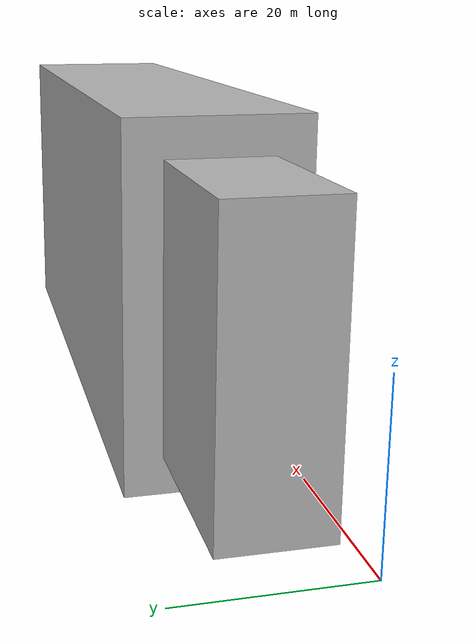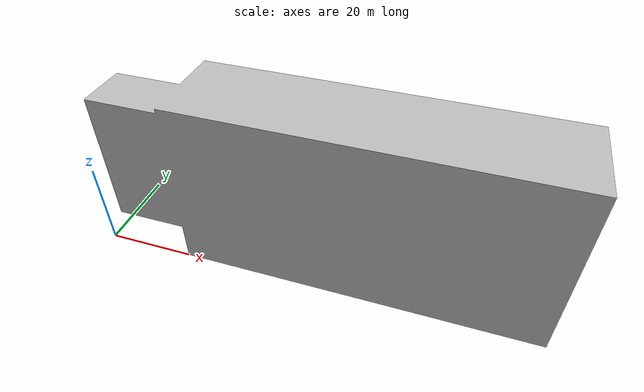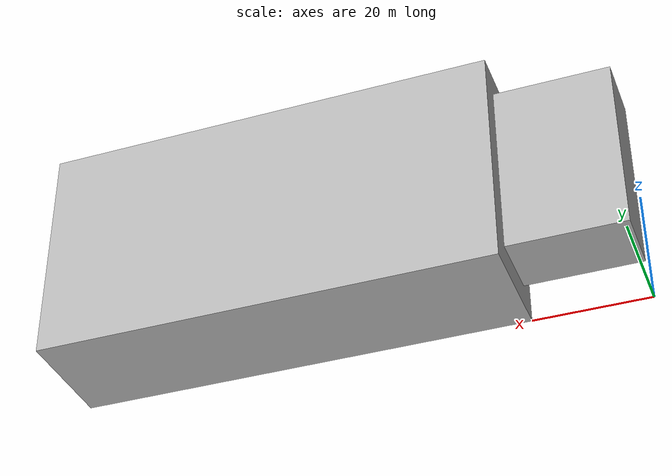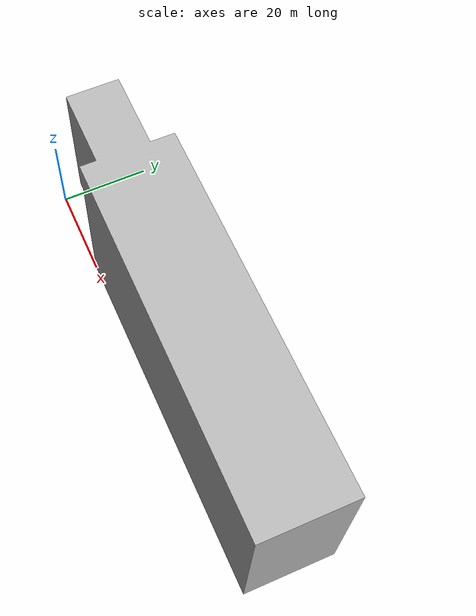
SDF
<?xml version="1.0"?>

<sdf version='1.6'>
  <model name='flash_body'>
    <link name='flash_body_link'>
      <pose>0 0 0 0 0 0</pose>

      <visual name='flash_body_visual'>
        <geometry>
          <mesh>
            <uri>model://flash_body/meshes/flash_body.STL</uri>
          </mesh>
        </geometry>
      </visual>

      <collision name='flash_body_collision'>
        <geometry>
          <mesh>
            <uri>model://flash_body/meshes/flash_body.STL</uri>
          </mesh>
        </geometry>
      </collision>

    </link>

  </model>
</sdf>
